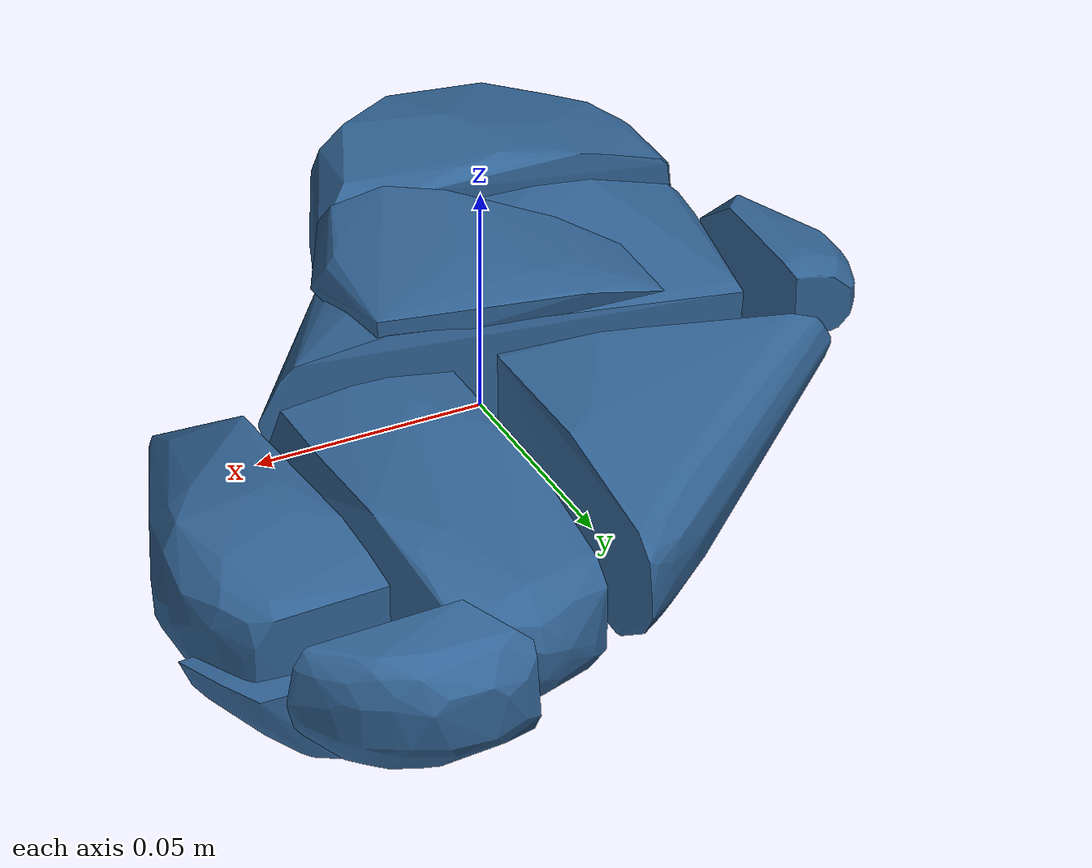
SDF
<?xml version='1.0' encoding='UTF-8'?>
<!-- This SDF was autogenerated by obj_to_drake_sdf.py -->
<sdf version="1.7">
  <model name="baby_toy">
    <link name="baby_toy">
      <inertial>
        <pose>0 0 0 0 0 0</pose>
        <mass>0.05</mass>
        <inertia>
          <ixx>0.00014652529</ixx>
          <iyy>0.00010348968</iyy>
          <izz>0.00023538527</izz>
          <ixy>-7.4616056e-05</ixy>
          <ixz>-7.0123374e-06</ixz>
          <iyz>-2.681934e-06</iyz>
        </inertia>
      </inertial>
      <visual name="convex_0">
        <pose>0 0 0 0 0 0</pose>
        <geometry>
          <mesh>
            <uri>baby_toy_convex_0.obj</uri>
          </mesh>
        </geometry>
        <material>
          <diffuse>0.19607843137254902 0.39215686274509803 0.5882352941176471 1</diffuse>
        </material>
      </visual>
      <collision name="convex_0_volume">
        <pose>0 0 0 0 0 0</pose>
        <geometry>
          <mesh>
            <uri>baby_toy_convex_0.obj</uri>
          </mesh>
        </geometry>
        <drake:proximity_properties xmlns:drake="uri:drake">
          <drake:compliant_hydroelastic/>
          <drake:hydroelastic_modulus> 3.0e7 </drake:hydroelastic_modulus>
          <drake:mesh_resolution_hint> 0.02 </drake:mesh_resolution_hint>
          <drake:hunt_crossley_dissipation>10</drake:hunt_crossley_dissipation>
          <drake:mu_dynamic>0.3</drake:mu_dynamic>
        </drake:proximity_properties>
      </collision>
      <visual name="convex_1">
        <pose>0 0 0 0 0 0</pose>
        <geometry>
          <mesh>
            <uri>baby_toy_convex_1.obj</uri>
          </mesh>
        </geometry>
        <material>
          <diffuse>0.19607843137254902 0.39215686274509803 0.5882352941176471 1</diffuse>
        </material>
      </visual>
      <collision name="convex_1_volume">
        <pose>0 0 0 0 0 0</pose>
        <geometry>
          <mesh>
            <uri>baby_toy_convex_1.obj</uri>
          </mesh>
        </geometry>
        <drake:proximity_properties xmlns:drake="uri:drake">
          <drake:compliant_hydroelastic/>
          <drake:hydroelastic_modulus> 3.0e7 </drake:hydroelastic_modulus>
          <drake:mesh_resolution_hint> 0.02 </drake:mesh_resolution_hint>
          <drake:hunt_crossley_dissipation>10</drake:hunt_crossley_dissipation>
          <drake:mu_dynamic>0.3</drake:mu_dynamic>
        </drake:proximity_properties>
      </collision>
      <visual name="convex_2">
        <pose>0 0 0 0 0 0</pose>
        <geometry>
          <mesh>
            <uri>baby_toy_convex_2.obj</uri>
          </mesh>
        </geometry>
        <material>
          <diffuse>0.19607843137254902 0.39215686274509803 0.5882352941176471 1</diffuse>
        </material>
      </visual>
      <collision name="convex_2_volume">
        <pose>0 0 0 0 0 0</pose>
        <geometry>
          <mesh>
            <uri>baby_toy_convex_2.obj</uri>
          </mesh>
        </geometry>
        <drake:proximity_properties xmlns:drake="uri:drake">
          <drake:compliant_hydroelastic/>
          <drake:hydroelastic_modulus> 3.0e7 </drake:hydroelastic_modulus>
          <drake:mesh_resolution_hint> 0.02 </drake:mesh_resolution_hint>
          <drake:hunt_crossley_dissipation>10</drake:hunt_crossley_dissipation>
          <drake:mu_dynamic>0.3</drake:mu_dynamic>
        </drake:proximity_properties>
      </collision>
      <visual name="convex_3">
        <pose>0 0 0 0 0 0</pose>
        <geometry>
          <mesh>
            <uri>baby_toy_convex_3.obj</uri>
          </mesh>
        </geometry>
        <material>
          <diffuse>0.19607843137254902 0.39215686274509803 0.5882352941176471 1</diffuse>
        </material>
      </visual>
      <collision name="convex_3_volume">
        <pose>0 0 0 0 0 0</pose>
        <geometry>
          <mesh>
            <uri>baby_toy_convex_3.obj</uri>
          </mesh>
        </geometry>
        <drake:proximity_properties xmlns:drake="uri:drake">
          <drake:compliant_hydroelastic/>
          <drake:hydroelastic_modulus> 3.0e7 </drake:hydroelastic_modulus>
          <drake:mesh_resolution_hint> 0.02 </drake:mesh_resolution_hint>
          <drake:hunt_crossley_dissipation>10</drake:hunt_crossley_dissipation>
          <drake:mu_dynamic>0.3</drake:mu_dynamic>
        </drake:proximity_properties>
      </collision>
      <visual name="convex_4">
        <pose>0 0 0 0 0 0</pose>
        <geometry>
          <mesh>
            <uri>baby_toy_convex_4.obj</uri>
          </mesh>
        </geometry>
        <material>
          <diffuse>0.19607843137254902 0.39215686274509803 0.5882352941176471 1</diffuse>
        </material>
      </visual>
      <collision name="convex_4_volume">
        <pose>0 0 0 0 0 0</pose>
        <geometry>
          <mesh>
            <uri>baby_toy_convex_4.obj</uri>
          </mesh>
        </geometry>
        <drake:proximity_properties xmlns:drake="uri:drake">
          <drake:compliant_hydroelastic/>
          <drake:hydroelastic_modulus> 3.0e7 </drake:hydroelastic_modulus>
          <drake:mesh_resolution_hint> 0.02 </drake:mesh_resolution_hint>
          <drake:hunt_crossley_dissipation>10</drake:hunt_crossley_dissipation>
          <drake:mu_dynamic>0.3</drake:mu_dynamic>
        </drake:proximity_properties>
      </collision>
      <visual name="convex_5">
        <pose>0 0 0 0 0 0</pose>
        <geometry>
          <mesh>
            <uri>baby_toy_convex_5.obj</uri>
          </mesh>
        </geometry>
        <material>
          <diffuse>0.19607843137254902 0.39215686274509803 0.5882352941176471 1</diffuse>
        </material>
      </visual>
      <collision name="convex_5_volume">
        <pose>0 0 0 0 0 0</pose>
        <geometry>
          <mesh>
            <uri>baby_toy_convex_5.obj</uri>
          </mesh>
        </geometry>
        <drake:proximity_properties xmlns:drake="uri:drake">
          <drake:compliant_hydroelastic/>
          <drake:hydroelastic_modulus> 3.0e7 </drake:hydroelastic_modulus>
          <drake:mesh_resolution_hint> 0.02 </drake:mesh_resolution_hint>
          <drake:hunt_crossley_dissipation>10</drake:hunt_crossley_dissipation>
          <drake:mu_dynamic>0.3</drake:mu_dynamic>
        </drake:proximity_properties>
      </collision>
      <visual name="convex_6">
        <pose>0 0 0 0 0 0</pose>
        <geometry>
          <mesh>
            <uri>baby_toy_convex_6.obj</uri>
          </mesh>
        </geometry>
        <material>
          <diffuse>0.19607843137254902 0.39215686274509803 0.5882352941176471 1</diffuse>
        </material>
      </visual>
      <collision name="convex_6_volume">
        <pose>0 0 0 0 0 0</pose>
        <geometry>
          <mesh>
            <uri>baby_toy_convex_6.obj</uri>
          </mesh>
        </geometry>
        <drake:proximity_properties xmlns:drake="uri:drake">
          <drake:compliant_hydroelastic/>
          <drake:hydroelastic_modulus> 3.0e7 </drake:hydroelastic_modulus>
          <drake:mesh_resolution_hint> 0.02 </drake:mesh_resolution_hint>
          <drake:hunt_crossley_dissipation>10</drake:hunt_crossley_dissipation>
          <drake:mu_dynamic>0.3</drake:mu_dynamic>
        </drake:proximity_properties>
      </collision>
      <visual name="convex_7">
        <pose>0 0 0 0 0 0</pose>
        <geometry>
          <mesh>
            <uri>baby_toy_convex_7.obj</uri>
          </mesh>
        </geometry>
        <material>
          <diffuse>0.19607843137254902 0.39215686274509803 0.5882352941176471 1</diffuse>
        </material>
      </visual>
      <collision name="convex_7_volume">
        <pose>0 0 0 0 0 0</pose>
        <geometry>
          <mesh>
            <uri>baby_toy_convex_7.obj</uri>
          </mesh>
        </geometry>
        <drake:proximity_properties xmlns:drake="uri:drake">
          <drake:compliant_hydroelastic/>
          <drake:hydroelastic_modulus> 3.0e7 </drake:hydroelastic_modulus>
          <drake:mesh_resolution_hint> 0.02 </drake:mesh_resolution_hint>
          <drake:hunt_crossley_dissipation>10</drake:hunt_crossley_dissipation>
          <drake:mu_dynamic>0.3</drake:mu_dynamic>
        </drake:proximity_properties>
      </collision>
      <visual name="convex_8">
        <pose>0 0 0 0 0 0</pose>
        <geometry>
          <mesh>
            <uri>baby_toy_convex_8.obj</uri>
          </mesh>
        </geometry>
        <material>
          <diffuse>0.19607843137254902 0.39215686274509803 0.5882352941176471 1</diffuse>
        </material>
      </visual>
      <collision name="convex_8_volume">
        <pose>0 0 0 0 0 0</pose>
        <geometry>
          <mesh>
            <uri>baby_toy_convex_8.obj</uri>
          </mesh>
        </geometry>
        <drake:proximity_properties xmlns:drake="uri:drake">
          <drake:compliant_hydroelastic/>
          <drake:hydroelastic_modulus> 3.0e7 </drake:hydroelastic_modulus>
          <drake:mesh_resolution_hint> 0.02 </drake:mesh_resolution_hint>
          <drake:hunt_crossley_dissipation>10</drake:hunt_crossley_dissipation>
          <drake:mu_dynamic>0.3</drake:mu_dynamic>
        </drake:proximity_properties>
      </collision>
      <visual name="convex_9">
        <pose>0 0 0 0 0 0</pose>
        <geometry>
          <mesh>
            <uri>baby_toy_convex_9.obj</uri>
          </mesh>
        </geometry>
        <material>
          <diffuse>0.19607843137254902 0.39215686274509803 0.5882352941176471 1</diffuse>
        </material>
      </visual>
      <collision name="convex_9_volume">
        <pose>0 0 0 0 0 0</pose>
        <geometry>
          <mesh>
            <uri>baby_toy_convex_9.obj</uri>
          </mesh>
        </geometry>
        <drake:proximity_properties xmlns:drake="uri:drake">
          <drake:compliant_hydroelastic/>
          <drake:hydroelastic_modulus> 3.0e7 </drake:hydroelastic_modulus>
          <drake:mesh_resolution_hint> 0.02 </drake:mesh_resolution_hint>
          <drake:hunt_crossley_dissipation>10</drake:hunt_crossley_dissipation>
          <drake:mu_dynamic>0.3</drake:mu_dynamic>
        </drake:proximity_properties>
      </collision>
    </link>
  </model>
</sdf>
